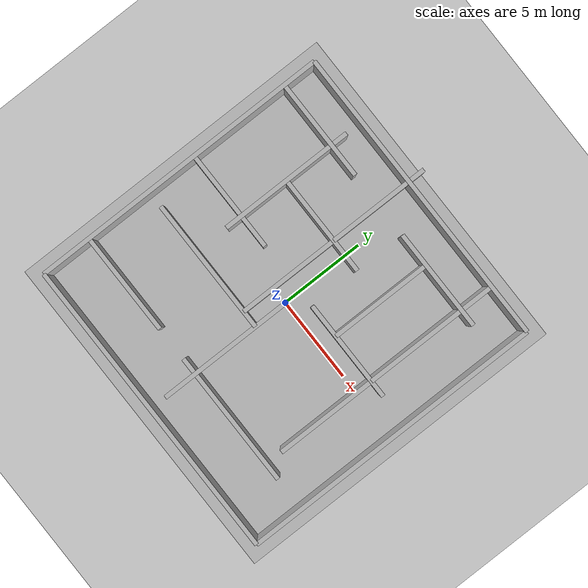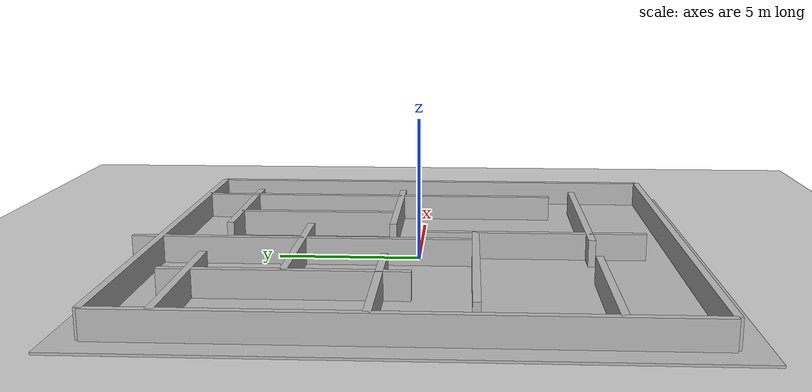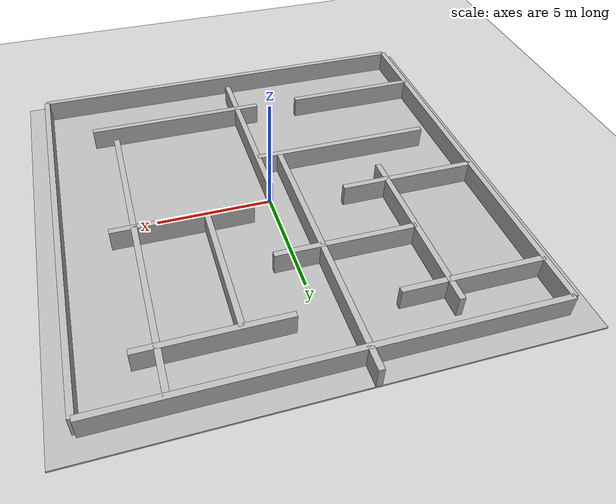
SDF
<?xml version="1.0" ?>

<sdf version="1.6">

<world name="maze_world">

  <!-- light -->
  <include>
    <uri>model://sun</uri>
  </include>

  <!-- ground -->
  <include>
    <uri>model://ground_plane</uri>
  </include>

  <!-- MAZE MODEL -->
  <include>
    <uri>model://maze_model_rs</uri>
  </include>

</world>

</sdf>

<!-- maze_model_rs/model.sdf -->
<sdf version="1.6">

<model name="maze_model_rs">

<static>true</static>

<!-- FLOOR -->
<link name="floor">
  <collision name="collision">
    <geometry>
      <box>
        <size>20 20 0.1</size>
      </box>
    </geometry>
  </collision>
  <visual name="visual">
    <geometry>
      <box>
        <size>20 20 0.1</size>
      </box>
    </geometry>
  </visual>
</link>

<!-- OUTER WALLS -->

<link name="wall_outer1">
<pose>0 9 0.5 0 0 0</pose>
<collision name="c"><geometry><box><size>18 0.25 1</size></box></geometry></collision>
<visual name="v"><geometry><box><size>18 0.25 1</size></box></geometry></visual>
</link>

<link name="wall_outer2">
<pose>0 -9 0.5 0 0 0</pose>
<collision name="c"><geometry><box><size>18 0.25 1</size></box></geometry></collision>
<visual name="v"><geometry><box><size>18 0.25 1</size></box></geometry></visual>
</link>

<link name="wall_outer3">
<pose>9 0 0.5 0 0 1.57</pose>
<collision name="c"><geometry><box><size>18 0.25 1</size></box></geometry></collision>
<visual name="v"><geometry><box><size>18 0.25 1</size></box></geometry></visual>
</link>

<link name="wall_outer4">
<pose>-9 0 0.5 0 0 1.57</pose>
<collision name="c"><geometry><box><size>18 0.25 1</size></box></geometry></collision>
<visual name="v"><geometry><box><size>18 0.25 1</size></box></geometry></visual>
</link>

<!-- INNER MAZE WALLS -->

<link name="w1">
<pose>-6 7 0.5 0 0 0</pose>
<collision name="c"><geometry><box><size>6 0.25 1</size></box></geometry></collision>
<visual name="v"><geometry><box><size>6 0.25 1</size></box></geometry></visual>
</link>

<link name="w2">
<pose>-1 7 0.5 0 0 1.57</pose>
<collision name="c"><geometry><box><size>6 0.25 1</size></box></geometry></collision>
<visual name="v"><geometry><box><size>6 0.25 1</size></box></geometry></visual>
</link>

<link name="w3">
<pose>4 7 0.5 0 0 0</pose>
<collision name="c"><geometry><box><size>6 0.25 1</size></box></geometry></collision>
<visual name="v"><geometry><box><size>6 0.25 1</size></box></geometry></visual>
</link>

<link name="w4">
<pose>6 5 0.5 0 0 1.57</pose>
<collision name="c"><geometry><box><size>8 0.25 1</size></box></geometry></collision>
<visual name="v"><geometry><box><size>8 0.25 1</size></box></geometry></visual>
</link>

<link name="w5">
<pose>-5 4 0.5 0 0 1.57</pose>
<collision name="c"><geometry><box><size>8 0.25 1</size></box></geometry></collision>
<visual name="v"><geometry><box><size>8 0.25 1</size></box></geometry></visual>
</link>

<link name="w6">
<pose>-2 4 0.5 0 0 0</pose>
<collision name="c"><geometry><box><size>6 0.25 1</size></box></geometry></collision>
<visual name="v"><geometry><box><size>6 0.25 1</size></box></geometry></visual>
</link>

<link name="w7">
<pose>3 4 0.5 0 0 1.57</pose>
<collision name="c"><geometry><box><size>6 0.25 1</size></box></geometry></collision>
<visual name="v"><geometry><box><size>6 0.25 1</size></box></geometry></visual>
</link>

<link name="w8">
<pose>-6 1 0.5 0 0 0</pose>
<collision name="c"><geometry><box><size>6 0.25 1</size></box></geometry></collision>
<visual name="v"><geometry><box><size>6 0.25 1</size></box></geometry></visual>
</link>

<link name="w9">
<pose>-1 1 0.5 0 0 1.57</pose>
<collision name="c"><geometry><box><size>6 0.25 1</size></box></geometry></collision>
<visual name="v"><geometry><box><size>6 0.25 1</size></box></geometry></visual>
</link>

<link name="w10">
<pose>4 1 0.5 0 0 0</pose>
<collision name="c"><geometry><box><size>6 0.25 1</size></box></geometry></collision>
<visual name="v"><geometry><box><size>6 0.25 1</size></box></geometry></visual>
</link>

<link name="w11">
<pose>6 -2 0.5 0 0 1.57</pose>
<collision name="c"><geometry><box><size>6 0.25 1</size></box></geometry></collision>
<visual name="v"><geometry><box><size>6 0.25 1</size></box></geometry></visual>
</link>

<link name="w12">
<pose>-4 -2 0.5 0 0 0</pose>
<collision name="c"><geometry><box><size>8 0.25 1</size></box></geometry></collision>
<visual name="v"><geometry><box><size>8 0.25 1</size></box></geometry></visual>
</link>

<link name="w13">
<pose>0 -4 0.5 0 0 1.57</pose>
<collision name="c"><geometry><box><size>8 0.25 1</size></box></geometry></collision>
<visual name="v"><geometry><box><size>8 0.25 1</size></box></geometry></visual>
</link>

<link name="w14">
<pose>-6 -6 0.5 0 0 0</pose>
<collision name="c"><geometry><box><size>6 0.25 1</size></box></geometry></collision>
<visual name="v"><geometry><box><size>6 0.25 1</size></box></geometry></visual>
</link>

<link name="w15">
<pose>3 -6 0.5 0 0 0</pose>
<collision name="c"><geometry><box><size>8 0.25 1</size></box></geometry></collision>
<visual name="v"><geometry><box><size>8 0.25 1</size></box></geometry></visual>
</link>

</model>

</sdf>
